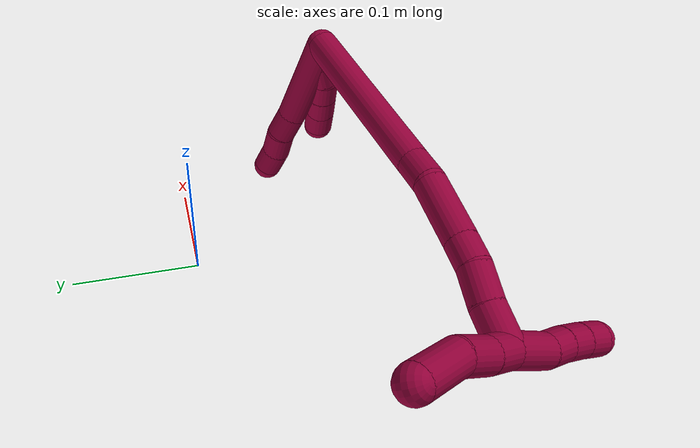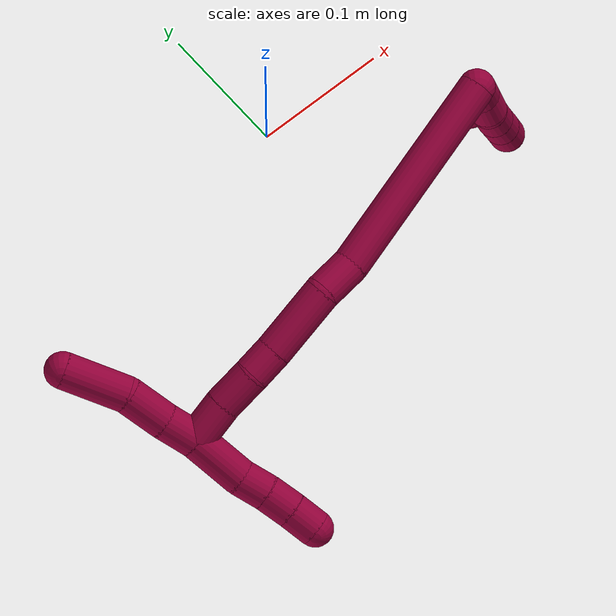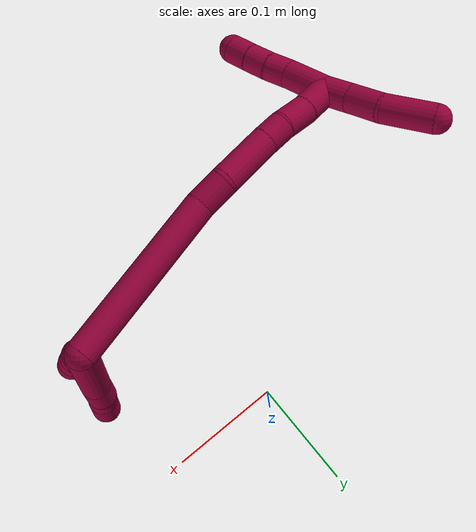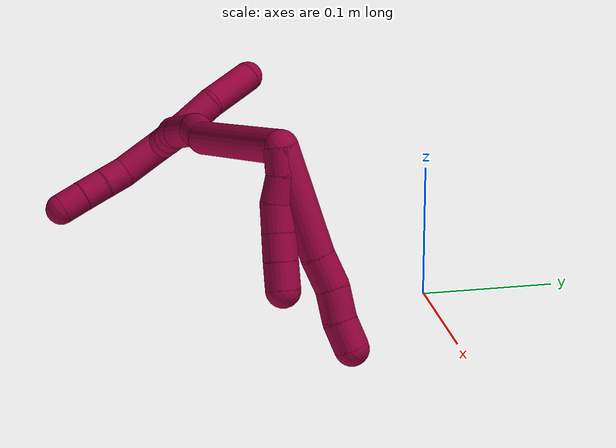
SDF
<sdf version="1.7">
 <world name="default">
  <model name="8">
   <static>0</static>
   <link name="8">
    <collision name="collision-cylinder-e_1_2_8">
     <pose>-0.008227 -0.019031 -0.034343 2.63557 -0.206536 -0.762451</pose>
     <geometry><cylinder><radius>0.0125</radius><length>0.080233</length></cylinder></geometry>
     <surface>
      <friction><ode><mu>1.16</mu><mu2>1.16</mu2><slip1>0</slip1><slip2>0</slip2></ode></friction>
      <contact><ode><kp>1e+06</kp><kd>1</kd><max_vel>0</max_vel><min_depth>0.001</min_depth></ode></contact>
     </surface>
    </collision>
    <visual name="visual-cylinder-e_1_2_8">
     <pose>-0.008227 -0.019031 -0.034343 2.63557 -0.206536 -0.762451</pose>
     <geometry><cylinder><radius>0.0125</radius><length>0.080233</length></cylinder></geometry>
     <material><ambient>0.584314 0 0.227451 1</ambient></material>
    </visual>
    <collision name="collision-cylinder-e_2_8_9">
     <pose>-0.019561 -0.04265 -0.079596 2.74353 -0.256778 -1.1387</pose>
     <geometry><cylinder><radius>0.0125</radius><length>0.02447</length></cylinder></geometry>
     <surface>
      <friction><ode><mu>1.16</mu><mu2>1.16</mu2><slip1>0</slip1><slip2>0</slip2></ode></friction>
      <contact><ode><kp>1e+06</kp><kd>1</kd><max_vel>0</max_vel><min_depth>0.001</min_depth></ode></contact>
     </surface>
    </collision>
    <visual name="visual-cylinder-e_2_8_9">
     <pose>-0.019561 -0.04265 -0.079596 2.74353 -0.256778 -1.1387</pose>
     <geometry><cylinder><radius>0.0125</radius><length>0.02447</length></cylinder></geometry>
     <material><ambient>0.584314 0 0.227451 1</ambient></material>
    </visual>
    <collision name="collision-cylinder-e_3_9_10">
     <pose>-0.024497 -0.053873 -0.100066 2.53494 -0.155873 -0.489044</pose>
     <geometry><cylinder><radius>0.0125</radius><length>0.023563</length></cylinder></geometry>
     <surface>
      <friction><ode><mu>1.16</mu><mu2>1.16</mu2><slip1>0</slip1><slip2>0</slip2></ode></friction>
      <contact><ode><kp>1e+06</kp><kd>1</kd><max_vel>0</max_vel><min_depth>0.001</min_depth></ode></contact>
     </surface>
    </collision>
    <visual name="visual-cylinder-e_3_9_10">
     <pose>-0.024497 -0.053873 -0.100066 2.53494 -0.155873 -0.489044</pose>
     <geometry><cylinder><radius>0.0125</radius><length>0.023563</length></cylinder></geometry>
     <material><ambient>0.584314 0 0.227451 1</ambient></material>
    </visual>
    <collision name="collision-cylinder-e_4_10_6">
     <pose>-0.028505 -0.064876 -0.119337 2.71879 -0.201888 -0.881945</pose>
     <geometry><cylinder><radius>0.0125</radius><length>0.021734</length></cylinder></geometry>
     <surface>
      <friction><ode><mu>1.16</mu><mu2>1.16</mu2><slip1>0</slip1><slip2>0</slip2></ode></friction>
      <contact><ode><kp>1e+06</kp><kd>1</kd><max_vel>0</max_vel><min_depth>0.001</min_depth></ode></contact>
     </surface>
    </collision>
    <visual name="visual-cylinder-e_4_10_6">
     <pose>-0.028505 -0.064876 -0.119337 2.71879 -0.201888 -0.881945</pose>
     <geometry><cylinder><radius>0.0125</radius><length>0.021734</length></cylinder></geometry>
     <material><ambient>0.584314 0 0.227451 1</ambient></material>
    </visual>
    <collision name="collision-cylinder-e_1_2_11">
     <pose>-0.001114 -0.006595 -0.007434 2.41593 -0.111667 -0.292347</pose>
     <geometry><cylinder><radius>0.0125</radius><length>0.02</length></cylinder></geometry>
     <surface>
      <friction><ode><mu>1.16</mu><mu2>1.16</mu2><slip1>0</slip1><slip2>0</slip2></ode></friction>
      <contact><ode><kp>1e+06</kp><kd>1</kd><max_vel>0</max_vel><min_depth>0.001</min_depth></ode></contact>
     </surface>
    </collision>
    <visual name="visual-cylinder-e_1_2_11">
     <pose>-0.001114 -0.006595 -0.007434 2.41593 -0.111667 -0.292347</pose>
     <geometry><cylinder><radius>0.0125</radius><length>0.02</length></cylinder></geometry>
     <material><ambient>0.584314 0 0.227451 1</ambient></material>
    </visual>
    <collision name="collision-cylinder-e_2_11_12">
     <pose>-0.003083 -0.021761 -0.019948 2.10583 -0.085571 -0.149999</pose>
     <geometry><cylinder><radius>0.0125</radius><length>0.02</length></cylinder></geometry>
     <surface>
      <friction><ode><mu>1.16</mu><mu2>1.16</mu2><slip1>0</slip1><slip2>0</slip2></ode></friction>
      <contact><ode><kp>1e+06</kp><kd>1</kd><max_vel>0</max_vel><min_depth>0.001</min_depth></ode></contact>
     </surface>
    </collision>
    <visual name="visual-cylinder-e_2_11_12">
     <pose>-0.003083 -0.021761 -0.019948 2.10583 -0.085571 -0.149999</pose>
     <geometry><cylinder><radius>0.0125</radius><length>0.02</length></cylinder></geometry>
     <material><ambient>0.584314 0 0.227451 1</ambient></material>
    </visual>
    <collision name="collision-cylinder-e_3_12_13">
     <pose>-0.004554 -0.037167 -0.032301 2.38724 -0.061633 -0.155321</pose>
     <geometry><cylinder><radius>0.0125</radius><length>0.02</length></cylinder></geometry>
     <surface>
      <friction><ode><mu>1.16</mu><mu2>1.16</mu2><slip1>0</slip1><slip2>0</slip2></ode></friction>
      <contact><ode><kp>1e+06</kp><kd>1</kd><max_vel>0</max_vel><min_depth>0.001</min_depth></ode></contact>
     </surface>
    </collision>
    <visual name="visual-cylinder-e_3_12_13">
     <pose>-0.004554 -0.037167 -0.032301 2.38724 -0.061633 -0.155321</pose>
     <geometry><cylinder><radius>0.0125</radius><length>0.02</length></cylinder></geometry>
     <material><ambient>0.584314 0 0.227451 1</ambient></material>
    </visual>
    <collision name="collision-cylinder-e_4_13_14">
     <pose>-0.00547 -0.050819 -0.046886 2.39119 -0.030015 -0.076177</pose>
     <geometry><cylinder><radius>0.0125</radius><length>0.02</length></cylinder></geometry>
     <surface>
      <friction><ode><mu>1.16</mu><mu2>1.16</mu2><slip1>0</slip1><slip2>0</slip2></ode></friction>
      <contact><ode><kp>1e+06</kp><kd>1</kd><max_vel>0</max_vel><min_depth>0.001</min_depth></ode></contact>
     </surface>
    </collision>
    <visual name="visual-cylinder-e_4_13_14">
     <pose>-0.00547 -0.050819 -0.046886 2.39119 -0.030015 -0.076177</pose>
     <geometry><cylinder><radius>0.0125</radius><length>0.02</length></cylinder></geometry>
     <material><ambient>0.584314 0 0.227451 1</ambient></material>
    </visual>
    <collision name="collision-cylinder-e_5_14_5">
     <pose>-0.006284 -0.064286 -0.061646 2.41276 -0.051423 -0.134634</pose>
     <geometry><cylinder><radius>0.0125</radius><length>0.02</length></cylinder></geometry>
     <surface>
      <friction><ode><mu>1.16</mu><mu2>1.16</mu2><slip1>0</slip1><slip2>0</slip2></ode></friction>
      <contact><ode><kp>1e+06</kp><kd>1</kd><max_vel>0</max_vel><min_depth>0.001</min_depth></ode></contact>
     </surface>
    </collision>
    <visual name="visual-cylinder-e_5_14_5">
     <pose>-0.006284 -0.064286 -0.061646 2.41276 -0.051423 -0.134634</pose>
     <geometry><cylinder><radius>0.0125</radius><length>0.02</length></cylinder></geometry>
     <material><ambient>0.584314 0 0.227451 1</ambient></material>
    </visual>
    <collision name="collision-cylinder-e_1_2_15">
     <pose>-0.05948 -0.02289 0.035293 0.575358 -0.955237 -0.303934</pose>
     <geometry><cylinder><radius>0.0125</radius><length>0.145705</length></cylinder></geometry>
     <surface>
      <friction><ode><mu>1.16</mu><mu2>1.16</mu2><slip1>0</slip1><slip2>0</slip2></ode></friction>
      <contact><ode><kp>1e+06</kp><kd>1</kd><max_vel>0</max_vel><min_depth>0.001</min_depth></ode></contact>
     </surface>
    </collision>
    <visual name="visual-cylinder-e_1_2_15">
     <pose>-0.05948 -0.02289 0.035293 0.575358 -0.955237 -0.303934</pose>
     <geometry><cylinder><radius>0.0125</radius><length>0.145705</length></cylinder></geometry>
     <material><ambient>0.584314 0 0.227451 1</ambient></material>
    </visual>
    <collision name="collision-cylinder-e_2_15_16">
     <pose>-0.130042 -0.04695 0.077871 0.159308 -0.9834 -0.08545</pose>
     <geometry><cylinder><radius>0.0125</radius><length>0.026625</length></cylinder></geometry>
     <surface>
      <friction><ode><mu>1.16</mu><mu2>1.16</mu2><slip1>0</slip1><slip2>0</slip2></ode></friction>
      <contact><ode><kp>1e+06</kp><kd>1</kd><max_vel>0</max_vel><min_depth>0.001</min_depth></ode></contact>
     </surface>
    </collision>
    <visual name="visual-cylinder-e_2_15_16">
     <pose>-0.130042 -0.04695 0.077871 0.159308 -0.9834 -0.08545</pose>
     <geometry><cylinder><radius>0.0125</radius><length>0.026625</length></cylinder></geometry>
     <material><ambient>0.584314 0 0.227451 1</ambient></material>
    </visual>
    <collision name="collision-cylinder-e_3_16_17">
     <pose>-0.16307 -0.055819 0.093956 0.718737 -1.08128 -0.443621</pose>
     <geometry><cylinder><radius>0.0125</radius><length>0.049736</length></cylinder></geometry>
     <surface>
      <friction><ode><mu>1.16</mu><mu2>1.16</mu2><slip1>0</slip1><slip2>0</slip2></ode></friction>
      <contact><ode><kp>1e+06</kp><kd>1</kd><max_vel>0</max_vel><min_depth>0.001</min_depth></ode></contact>
     </surface>
    </collision>
    <visual name="visual-cylinder-e_3_16_17">
     <pose>-0.16307 -0.055819 0.093956 0.718737 -1.08128 -0.443621</pose>
     <geometry><cylinder><radius>0.0125</radius><length>0.049736</length></cylinder></geometry>
     <material><ambient>0.584314 0 0.227451 1</ambient></material>
    </visual>
    <collision name="collision-cylinder-e_4_17_18">
     <pose>-0.194404 -0.066119 0.106537 0.602616 -1.11602 -0.383195</pose>
     <geometry><cylinder><radius>0.0125</radius><length>0.020896</length></cylinder></geometry>
     <surface>
      <friction><ode><mu>1.16</mu><mu2>1.16</mu2><slip1>0</slip1><slip2>0</slip2></ode></friction>
      <contact><ode><kp>1e+06</kp><kd>1</kd><max_vel>0</max_vel><min_depth>0.001</min_depth></ode></contact>
     </surface>
    </collision>
    <visual name="visual-cylinder-e_4_17_18">
     <pose>-0.194404 -0.066119 0.106537 0.602616 -1.11602 -0.383195</pose>
     <geometry><cylinder><radius>0.0125</radius><length>0.020896</length></cylinder></geometry>
     <material><ambient>0.584314 0 0.227451 1</ambient></material>
    </visual>
    <collision name="collision-cylinder-e_5_18_19">
     <pose>-0.216542 -0.072841 0.112897 1.01162 -1.20659 -0.729101</pose>
     <geometry><cylinder><radius>0.0125</radius><length>0.027294</length></cylinder></geometry>
     <surface>
      <friction><ode><mu>1.16</mu><mu2>1.16</mu2><slip1>0</slip1><slip2>0</slip2></ode></friction>
      <contact><ode><kp>1e+06</kp><kd>1</kd><max_vel>0</max_vel><min_depth>0.001</min_depth></ode></contact>
     </surface>
    </collision>
    <visual name="visual-cylinder-e_5_18_19">
     <pose>-0.216542 -0.072841 0.112897 1.01162 -1.20659 -0.729101</pose>
     <geometry><cylinder><radius>0.0125</radius><length>0.027294</length></cylinder></geometry>
     <material><ambient>0.584314 0 0.227451 1</ambient></material>
    </visual>
    <collision name="collision-cylinder-e_6_19_1">
     <pose>-0.24248 -0.082656 0.119334 0.975275 -1.09001 -0.622181</pose>
     <geometry><cylinder><radius>0.0125</radius><length>0.029744</length></cylinder></geometry>
     <surface>
      <friction><ode><mu>1.16</mu><mu2>1.16</mu2><slip1>0</slip1><slip2>0</slip2></ode></friction>
      <contact><ode><kp>1e+06</kp><kd>1</kd><max_vel>0</max_vel><min_depth>0.001</min_depth></ode></contact>
     </surface>
    </collision>
    <visual name="visual-cylinder-e_6_19_1">
     <pose>-0.24248 -0.082656 0.119334 0.975275 -1.09001 -0.622181</pose>
     <geometry><cylinder><radius>0.0125</radius><length>0.029744</length></cylinder></geometry>
     <material><ambient>0.584314 0 0.227451 1</ambient></material>
    </visual>
    <collision name="collision-cylinder-e_1_1_20">
     <pose>-0.261476 -0.077528 0.122651 -1.62082 -0.492186 0.516362</pose>
     <geometry><cylinder><radius>0.0125</radius><length>0.024591</length></cylinder></geometry>
     <surface>
      <friction><ode><mu>1.16</mu><mu2>1.16</mu2><slip1>0</slip1><slip2>0</slip2></ode></friction>
      <contact><ode><kp>1e+06</kp><kd>1</kd><max_vel>0</max_vel><min_depth>0.001</min_depth></ode></contact>
     </surface>
    </collision>
    <visual name="visual-cylinder-e_1_1_20">
     <pose>-0.261476 -0.077528 0.122651 -1.62082 -0.492186 0.516362</pose>
     <geometry><cylinder><radius>0.0125</radius><length>0.024591</length></cylinder></geometry>
     <material><ambient>0.584314 0 0.227451 1</ambient></material>
    </visual>
    <collision name="collision-cylinder-e_2_20_21">
     <pose>-0.273227 -0.052509 0.122062 -1.5741 -0.396316 0.397592</pose>
     <geometry><cylinder><radius>0.0125</radius><length>0.030779</length></cylinder></geometry>
     <surface>
      <friction><ode><mu>1.16</mu><mu2>1.16</mu2><slip1>0</slip1><slip2>0</slip2></ode></friction>
      <contact><ode><kp>1e+06</kp><kd>1</kd><max_vel>0</max_vel><min_depth>0.001</min_depth></ode></contact>
     </surface>
    </collision>
    <visual name="visual-cylinder-e_2_20_21">
     <pose>-0.273227 -0.052509 0.122062 -1.5741 -0.396316 0.397592</pose>
     <geometry><cylinder><radius>0.0125</radius><length>0.030779</length></cylinder></geometry>
     <material><ambient>0.584314 0 0.227451 1</ambient></material>
    </visual>
    <collision name="collision-cylinder-e_3_21_4">
     <pose>-0.293274 -0.021029 0.121511 -1.59996 -0.684317 0.702961</pose>
     <geometry><cylinder><radius>0.0125</radius><length>0.04463</length></cylinder></geometry>
     <surface>
      <friction><ode><mu>1.16</mu><mu2>1.16</mu2><slip1>0</slip1><slip2>0</slip2></ode></friction>
      <contact><ode><kp>1e+06</kp><kd>1</kd><max_vel>0</max_vel><min_depth>0.001</min_depth></ode></contact>
     </surface>
    </collision>
    <visual name="visual-cylinder-e_3_21_4">
     <pose>-0.293274 -0.021029 0.121511 -1.59996 -0.684317 0.702961</pose>
     <geometry><cylinder><radius>0.0125</radius><length>0.04463</length></cylinder></geometry>
     <material><ambient>0.584314 0 0.227451 1</ambient></material>
    </visual>
    <collision name="collision-cylinder-e_1_1_22">
     <pose>-0.248823 -0.106736 0.125125 1.46606 0.354517 0.319833</pose>
     <geometry><cylinder><radius>0.0125</radius><length>0.039426</length></cylinder></geometry>
     <surface>
      <friction><ode><mu>1.16</mu><mu2>1.16</mu2><slip1>0</slip1><slip2>0</slip2></ode></friction>
      <contact><ode><kp>1e+06</kp><kd>1</kd><max_vel>0</max_vel><min_depth>0.001</min_depth></ode></contact>
     </surface>
    </collision>
    <visual name="visual-cylinder-e_1_1_22">
     <pose>-0.248823 -0.106736 0.125125 1.46606 0.354517 0.319833</pose>
     <geometry><cylinder><radius>0.0125</radius><length>0.039426</length></cylinder></geometry>
     <material><ambient>0.584314 0 0.227451 1</ambient></material>
    </visual>
    <collision name="collision-cylinder-e_2_22_23">
     <pose>-0.236643 -0.133553 0.128593 1.39067 0.556984 0.468362</pose>
     <geometry><cylinder><radius>0.0125</radius><length>0.020191</length></cylinder></geometry>
     <surface>
      <friction><ode><mu>1.16</mu><mu2>1.16</mu2><slip1>0</slip1><slip2>0</slip2></ode></friction>
      <contact><ode><kp>1e+06</kp><kd>1</kd><max_vel>0</max_vel><min_depth>0.001</min_depth></ode></contact>
     </surface>
    </collision>
    <visual name="visual-cylinder-e_2_22_23">
     <pose>-0.236643 -0.133553 0.128593 1.39067 0.556984 0.468362</pose>
     <geometry><cylinder><radius>0.0125</radius><length>0.020191</length></cylinder></geometry>
     <material><ambient>0.584314 0 0.227451 1</ambient></material>
    </visual>
    <collision name="collision-cylinder-e_3_23_24">
     <pose>-0.226707 -0.150851 0.131892 1.37451 0.470588 0.388552</pose>
     <geometry><cylinder><radius>0.0125</radius><length>0.020286</length></cylinder></geometry>
     <surface>
      <friction><ode><mu>1.16</mu><mu2>1.16</mu2><slip1>0</slip1><slip2>0</slip2></ode></friction>
      <contact><ode><kp>1e+06</kp><kd>1</kd><max_vel>0</max_vel><min_depth>0.001</min_depth></ode></contact>
     </surface>
    </collision>
    <visual name="visual-cylinder-e_3_23_24">
     <pose>-0.226707 -0.150851 0.131892 1.37451 0.470588 0.388552</pose>
     <geometry><cylinder><radius>0.0125</radius><length>0.020286</length></cylinder></geometry>
     <material><ambient>0.584314 0 0.227451 1</ambient></material>
    </visual>
    <collision name="collision-cylinder-e_4_24_3">
     <pose>-0.217975 -0.168711 0.135389 1.38031 0.423955 0.351685</pose>
     <geometry><cylinder><radius>0.0125</radius><length>0.020097</length></cylinder></geometry>
     <surface>
      <friction><ode><mu>1.16</mu><mu2>1.16</mu2><slip1>0</slip1><slip2>0</slip2></ode></friction>
      <contact><ode><kp>1e+06</kp><kd>1</kd><max_vel>0</max_vel><min_depth>0.001</min_depth></ode></contact>
     </surface>
    </collision>
    <visual name="visual-cylinder-e_4_24_3">
     <pose>-0.217975 -0.168711 0.135389 1.38031 0.423955 0.351685</pose>
     <geometry><cylinder><radius>0.0125</radius><length>0.020097</length></cylinder></geometry>
     <material><ambient>0.584314 0 0.227451 1</ambient></material>
    </visual>
    <collision name="collision-sphere-3">
     <pose>-0.213841 -0.177704 0.137123 0 -0 0</pose>
     <geometry><sphere><radius>0.0125</radius></sphere></geometry>
     <surface>
      <friction><ode><mu>1.16</mu><mu2>1.16</mu2><slip1>0</slip1><slip2>0</slip2></ode></friction>
      <contact><ode><kp>1e+06</kp><kd>1</kd><max_vel>0</max_vel><min_depth>0.001</min_depth></ode></contact>
     </surface>
    </collision>
    <visual name="visual-sphere-3">
     <pose>-0.213841 -0.177704 0.137123 0 -0 0</pose>
     <geometry><sphere><radius>0.0125</radius></sphere></geometry>
     <material><ambient>0.584314 0 0.227451 1</ambient></material>
    </visual>
    <collision name="collision-sphere-24">
     <pose>-0.222108 -0.159718 0.133655 0 -0 0</pose>
     <geometry><sphere><radius>0.0125</radius></sphere></geometry>
     <surface>
      <friction><ode><mu>1.16</mu><mu2>1.16</mu2><slip1>0</slip1><slip2>0</slip2></ode></friction>
      <contact><ode><kp>1e+06</kp><kd>1</kd><max_vel>0</max_vel><min_depth>0.001</min_depth></ode></contact>
     </surface>
    </collision>
    <visual name="visual-sphere-24">
     <pose>-0.222108 -0.159718 0.133655 0 -0 0</pose>
     <geometry><sphere><radius>0.0125</radius></sphere></geometry>
     <material><ambient>0.584314 0 0.227451 1</ambient></material>
    </visual>
    <collision name="collision-sphere-23">
     <pose>-0.231306 -0.141984 0.130129 0 -0 0</pose>
     <geometry><sphere><radius>0.0125</radius></sphere></geometry>
     <surface>
      <friction><ode><mu>1.16</mu><mu2>1.16</mu2><slip1>0</slip1><slip2>0</slip2></ode></friction>
      <contact><ode><kp>1e+06</kp><kd>1</kd><max_vel>0</max_vel><min_depth>0.001</min_depth></ode></contact>
     </surface>
    </collision>
    <visual name="visual-sphere-23">
     <pose>-0.231306 -0.141984 0.130129 0 -0 0</pose>
     <geometry><sphere><radius>0.0125</radius></sphere></geometry>
     <material><ambient>0.584314 0 0.227451 1</ambient></material>
    </visual>
    <collision name="collision-sphere-22">
     <pose>-0.24198 -0.125122 0.127058 0 -0 0</pose>
     <geometry><sphere><radius>0.0125</radius></sphere></geometry>
     <surface>
      <friction><ode><mu>1.16</mu><mu2>1.16</mu2><slip1>0</slip1><slip2>0</slip2></ode></friction>
      <contact><ode><kp>1e+06</kp><kd>1</kd><max_vel>0</max_vel><min_depth>0.001</min_depth></ode></contact>
     </surface>
    </collision>
    <visual name="visual-sphere-22">
     <pose>-0.24198 -0.125122 0.127058 0 -0 0</pose>
     <geometry><sphere><radius>0.0125</radius></sphere></geometry>
     <material><ambient>0.584314 0 0.227451 1</ambient></material>
    </visual>
    <collision name="collision-sphere-4">
     <pose>-0.307381 -0.003745 0.121007 0 -0 0</pose>
     <geometry><sphere><radius>0.0125</radius></sphere></geometry>
     <surface>
      <friction><ode><mu>1.16</mu><mu2>1.16</mu2><slip1>0</slip1><slip2>0</slip2></ode></friction>
      <contact><ode><kp>1e+06</kp><kd>1</kd><max_vel>0</max_vel><min_depth>0.001</min_depth></ode></contact>
     </surface>
    </collision>
    <visual name="visual-sphere-4">
     <pose>-0.307381 -0.003745 0.121007 0 -0 0</pose>
     <geometry><sphere><radius>0.0125</radius></sphere></geometry>
     <material><ambient>0.584314 0 0.227451 1</ambient></material>
    </visual>
    <collision name="collision-sphere-21">
     <pose>-0.279168 -0.038312 0.122015 0 -0 0</pose>
     <geometry><sphere><radius>0.0125</radius></sphere></geometry>
     <surface>
      <friction><ode><mu>1.16</mu><mu2>1.16</mu2><slip1>0</slip1><slip2>0</slip2></ode></friction>
      <contact><ode><kp>1e+06</kp><kd>1</kd><max_vel>0</max_vel><min_depth>0.001</min_depth></ode></contact>
     </surface>
    </collision>
    <visual name="visual-sphere-21">
     <pose>-0.279168 -0.038312 0.122015 0 -0 0</pose>
     <geometry><sphere><radius>0.0125</radius></sphere></geometry>
     <material><ambient>0.584314 0 0.227451 1</ambient></material>
    </visual>
    <collision name="collision-sphere-20">
     <pose>-0.267287 -0.066705 0.122109 0 -0 0</pose>
     <geometry><sphere><radius>0.0125</radius></sphere></geometry>
     <surface>
      <friction><ode><mu>1.16</mu><mu2>1.16</mu2><slip1>0</slip1><slip2>0</slip2></ode></friction>
      <contact><ode><kp>1e+06</kp><kd>1</kd><max_vel>0</max_vel><min_depth>0.001</min_depth></ode></contact>
     </surface>
    </collision>
    <visual name="visual-sphere-20">
     <pose>-0.267287 -0.066705 0.122109 0 -0 0</pose>
     <geometry><sphere><radius>0.0125</radius></sphere></geometry>
     <material><ambient>0.584314 0 0.227451 1</ambient></material>
    </visual>
    <collision name="collision-sphere-11">
     <pose>-0.002229 -0.01319 -0.014868 0 -0 0</pose>
     <geometry><sphere><radius>0.0125</radius></sphere></geometry>
     <surface>
      <friction><ode><mu>1.16</mu><mu2>1.16</mu2><slip1>0</slip1><slip2>0</slip2></ode></friction>
      <contact><ode><kp>1e+06</kp><kd>1</kd><max_vel>0</max_vel><min_depth>0.001</min_depth></ode></contact>
     </surface>
    </collision>
    <visual name="visual-sphere-11">
     <pose>-0.002229 -0.01319 -0.014868 0 -0 0</pose>
     <geometry><sphere><radius>0.0125</radius></sphere></geometry>
     <material><ambient>0.584314 0 0.227451 1</ambient></material>
    </visual>
    <collision name="collision-sphere-6">
     <pose>-0.030684 -0.069245 -0.129045 0 -0 0</pose>
     <geometry><sphere><radius>0.0125</radius></sphere></geometry>
     <surface>
      <friction><ode><mu>1.16</mu><mu2>1.16</mu2><slip1>0</slip1><slip2>0</slip2></ode></friction>
      <contact><ode><kp>1e+06</kp><kd>1</kd><max_vel>0</max_vel><min_depth>0.001</min_depth></ode></contact>
     </surface>
    </collision>
    <visual name="visual-sphere-6">
     <pose>-0.030684 -0.069245 -0.129045 0 -0 0</pose>
     <geometry><sphere><radius>0.0125</radius></sphere></geometry>
     <material><ambient>0.584314 0 0.227451 1</ambient></material>
    </visual>
    <collision name="collision-sphere-10">
     <pose>-0.026326 -0.060508 -0.109628 0 -0 0</pose>
     <geometry><sphere><radius>0.0125</radius></sphere></geometry>
     <surface>
      <friction><ode><mu>1.16</mu><mu2>1.16</mu2><slip1>0</slip1><slip2>0</slip2></ode></friction>
      <contact><ode><kp>1e+06</kp><kd>1</kd><max_vel>0</max_vel><min_depth>0.001</min_depth></ode></contact>
     </surface>
    </collision>
    <visual name="visual-sphere-10">
     <pose>-0.026326 -0.060508 -0.109628 0 -0 0</pose>
     <geometry><sphere><radius>0.0125</radius></sphere></geometry>
     <material><ambient>0.584314 0 0.227451 1</ambient></material>
    </visual>
    <collision name="collision-sphere-9">
     <pose>-0.022668 -0.047237 -0.090504 0 -0 0</pose>
     <geometry><sphere><radius>0.0125</radius></sphere></geometry>
     <surface>
      <friction><ode><mu>1.16</mu><mu2>1.16</mu2><slip1>0</slip1><slip2>0</slip2></ode></friction>
      <contact><ode><kp>1e+06</kp><kd>1</kd><max_vel>0</max_vel><min_depth>0.001</min_depth></ode></contact>
     </surface>
    </collision>
    <visual name="visual-sphere-9">
     <pose>-0.022668 -0.047237 -0.090504 0 -0 0</pose>
     <geometry><sphere><radius>0.0125</radius></sphere></geometry>
     <material><ambient>0.584314 0 0.227451 1</ambient></material>
    </visual>
    <collision name="collision-sphere-2">
     <geometry><sphere><radius>0.0125</radius></sphere></geometry>
     <surface>
      <friction><ode><mu>1.16</mu><mu2>1.16</mu2><slip1>0</slip1><slip2>0</slip2></ode></friction>
      <contact><ode><kp>1e+06</kp><kd>1</kd><max_vel>0</max_vel><min_depth>0.001</min_depth></ode></contact>
     </surface>
    </collision>
    <visual name="visual-sphere-2">
     <geometry><sphere><radius>0.0125</radius></sphere></geometry>
     <material><ambient>0.584314 0 0.227451 1</ambient></material>
    </visual>
    <collision name="collision-sphere-19">
     <pose>-0.229294 -0.076962 0.115476 0 -0 0</pose>
     <geometry><sphere><radius>0.0125</radius></sphere></geometry>
     <surface>
      <friction><ode><mu>1.16</mu><mu2>1.16</mu2><slip1>0</slip1><slip2>0</slip2></ode></friction>
      <contact><ode><kp>1e+06</kp><kd>1</kd><max_vel>0</max_vel><min_depth>0.001</min_depth></ode></contact>
     </surface>
    </collision>
    <visual name="visual-sphere-19">
     <pose>-0.229294 -0.076962 0.115476 0 -0 0</pose>
     <geometry><sphere><radius>0.0125</radius></sphere></geometry>
     <material><ambient>0.584314 0 0.227451 1</ambient></material>
    </visual>
    <collision name="collision-sphere-8">
     <pose>-0.016453 -0.038063 -0.068687 0 -0 0</pose>
     <geometry><sphere><radius>0.0125</radius></sphere></geometry>
     <surface>
      <friction><ode><mu>1.16</mu><mu2>1.16</mu2><slip1>0</slip1><slip2>0</slip2></ode></friction>
      <contact><ode><kp>1e+06</kp><kd>1</kd><max_vel>0</max_vel><min_depth>0.001</min_depth></ode></contact>
     </surface>
    </collision>
    <visual name="visual-sphere-8">
     <pose>-0.016453 -0.038063 -0.068687 0 -0 0</pose>
     <geometry><sphere><radius>0.0125</radius></sphere></geometry>
     <material><ambient>0.584314 0 0.227451 1</ambient></material>
    </visual>
    <collision name="collision-sphere-12">
     <pose>-0.003938 -0.030332 -0.025028 0 -0 0</pose>
     <geometry><sphere><radius>0.0125</radius></sphere></geometry>
     <surface>
      <friction><ode><mu>1.16</mu><mu2>1.16</mu2><slip1>0</slip1><slip2>0</slip2></ode></friction>
      <contact><ode><kp>1e+06</kp><kd>1</kd><max_vel>0</max_vel><min_depth>0.001</min_depth></ode></contact>
     </surface>
    </collision>
    <visual name="visual-sphere-12">
     <pose>-0.003938 -0.030332 -0.025028 0 -0 0</pose>
     <geometry><sphere><radius>0.0125</radius></sphere></geometry>
     <material><ambient>0.584314 0 0.227451 1</ambient></material>
    </visual>
    <collision name="collision-sphere-13">
     <pose>-0.00517 -0.044002 -0.039575 0 -0 0</pose>
     <geometry><sphere><radius>0.0125</radius></sphere></geometry>
     <surface>
      <friction><ode><mu>1.16</mu><mu2>1.16</mu2><slip1>0</slip1><slip2>0</slip2></ode></friction>
      <contact><ode><kp>1e+06</kp><kd>1</kd><max_vel>0</max_vel><min_depth>0.001</min_depth></ode></contact>
     </surface>
    </collision>
    <visual name="visual-sphere-13">
     <pose>-0.00517 -0.044002 -0.039575 0 -0 0</pose>
     <geometry><sphere><radius>0.0125</radius></sphere></geometry>
     <material><ambient>0.584314 0 0.227451 1</ambient></material>
    </visual>
    <collision name="collision-sphere-14">
     <pose>-0.00577 -0.057635 -0.054196 0 -0 0</pose>
     <geometry><sphere><radius>0.0125</radius></sphere></geometry>
     <surface>
      <friction><ode><mu>1.16</mu><mu2>1.16</mu2><slip1>0</slip1><slip2>0</slip2></ode></friction>
      <contact><ode><kp>1e+06</kp><kd>1</kd><max_vel>0</max_vel><min_depth>0.001</min_depth></ode></contact>
     </surface>
    </collision>
    <visual name="visual-sphere-14">
     <pose>-0.00577 -0.057635 -0.054196 0 -0 0</pose>
     <geometry><sphere><radius>0.0125</radius></sphere></geometry>
     <material><ambient>0.584314 0 0.227451 1</ambient></material>
    </visual>
    <collision name="collision-sphere-5">
     <pose>-0.006798 -0.070937 -0.069096 0 -0 0</pose>
     <geometry><sphere><radius>0.0125</radius></sphere></geometry>
     <surface>
      <friction><ode><mu>1.16</mu><mu2>1.16</mu2><slip1>0</slip1><slip2>0</slip2></ode></friction>
      <contact><ode><kp>1e+06</kp><kd>1</kd><max_vel>0</max_vel><min_depth>0.001</min_depth></ode></contact>
     </surface>
    </collision>
    <visual name="visual-sphere-5">
     <pose>-0.006798 -0.070937 -0.069096 0 -0 0</pose>
     <geometry><sphere><radius>0.0125</radius></sphere></geometry>
     <material><ambient>0.584314 0 0.227451 1</ambient></material>
    </visual>
    <collision name="collision-sphere-15">
     <pose>-0.118961 -0.045779 0.070587 0 -0 0</pose>
     <geometry><sphere><radius>0.0125</radius></sphere></geometry>
     <surface>
      <friction><ode><mu>1.16</mu><mu2>1.16</mu2><slip1>0</slip1><slip2>0</slip2></ode></friction>
      <contact><ode><kp>1e+06</kp><kd>1</kd><max_vel>0</max_vel><min_depth>0.001</min_depth></ode></contact>
     </surface>
    </collision>
    <visual name="visual-sphere-15">
     <pose>-0.118961 -0.045779 0.070587 0 -0 0</pose>
     <geometry><sphere><radius>0.0125</radius></sphere></geometry>
     <material><ambient>0.584314 0 0.227451 1</ambient></material>
    </visual>
    <collision name="collision-sphere-16">
     <pose>-0.141123 -0.04812 0.085155 0 -0 0</pose>
     <geometry><sphere><radius>0.0125</radius></sphere></geometry>
     <surface>
      <friction><ode><mu>1.16</mu><mu2>1.16</mu2><slip1>0</slip1><slip2>0</slip2></ode></friction>
      <contact><ode><kp>1e+06</kp><kd>1</kd><max_vel>0</max_vel><min_depth>0.001</min_depth></ode></contact>
     </surface>
    </collision>
    <visual name="visual-sphere-16">
     <pose>-0.141123 -0.04812 0.085155 0 -0 0</pose>
     <geometry><sphere><radius>0.0125</radius></sphere></geometry>
     <material><ambient>0.584314 0 0.227451 1</ambient></material>
    </visual>
    <collision name="collision-sphere-17">
     <pose>-0.185018 -0.063518 0.102756 0 -0 0</pose>
     <geometry><sphere><radius>0.0125</radius></sphere></geometry>
     <surface>
      <friction><ode><mu>1.16</mu><mu2>1.16</mu2><slip1>0</slip1><slip2>0</slip2></ode></friction>
      <contact><ode><kp>1e+06</kp><kd>1</kd><max_vel>0</max_vel><min_depth>0.001</min_depth></ode></contact>
     </surface>
    </collision>
    <visual name="visual-sphere-17">
     <pose>-0.185018 -0.063518 0.102756 0 -0 0</pose>
     <geometry><sphere><radius>0.0125</radius></sphere></geometry>
     <material><ambient>0.584314 0 0.227451 1</ambient></material>
    </visual>
    <collision name="collision-sphere-18">
     <pose>-0.20379 -0.068721 0.110318 0 -0 0</pose>
     <geometry><sphere><radius>0.0125</radius></sphere></geometry>
     <surface>
      <friction><ode><mu>1.16</mu><mu2>1.16</mu2><slip1>0</slip1><slip2>0</slip2></ode></friction>
      <contact><ode><kp>1e+06</kp><kd>1</kd><max_vel>0</max_vel><min_depth>0.001</min_depth></ode></contact>
     </surface>
    </collision>
    <visual name="visual-sphere-18">
     <pose>-0.20379 -0.068721 0.110318 0 -0 0</pose>
     <geometry><sphere><radius>0.0125</radius></sphere></geometry>
     <material><ambient>0.584314 0 0.227451 1</ambient></material>
    </visual>
    <collision name="collision-sphere-1">
     <pose>-0.255666 -0.08835 0.123192 0 -0 0</pose>
     <geometry><sphere><radius>0.0125</radius></sphere></geometry>
     <surface>
      <friction><ode><mu>1.16</mu><mu2>1.16</mu2><slip1>0</slip1><slip2>0</slip2></ode></friction>
      <contact><ode><kp>1e+06</kp><kd>1</kd><max_vel>0</max_vel><min_depth>0.001</min_depth></ode></contact>
     </surface>
    </collision>
    <visual name="visual-sphere-1">
     <pose>-0.255666 -0.08835 0.123192 0 -0 0</pose>
     <geometry><sphere><radius>0.0125</radius></sphere></geometry>
     <material><ambient>0.584314 0 0.227451 1</ambient></material>
    </visual>
    <inertial>
     <pose>-0.122222 -0.053158 0.043799 0 -0 0</pose>
     <mass>0.75</mass>
     <inertia>
      <ixx>0.000118</ixx>
      <ixy>0</ixy>
      <ixz>0</ixz>
      <iyy>0.000146</iyy>
      <iyz>0</iyz>
      <izz>0.000362</izz>
     </inertia>
    </inertial>
   </link>
   <pose>0.078654 -0.123701 0.149007 0.875828 -0.37818 -0.393624</pose>
  </model>
 </world>
</sdf>
